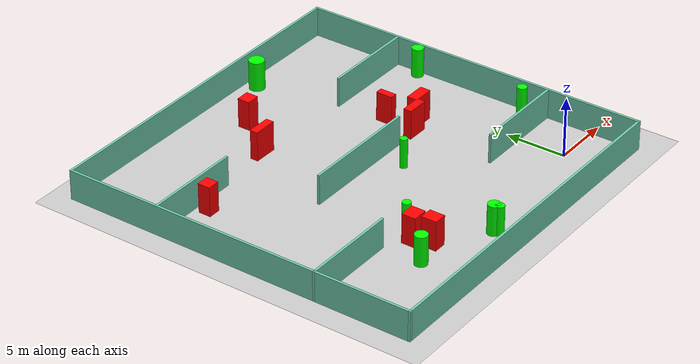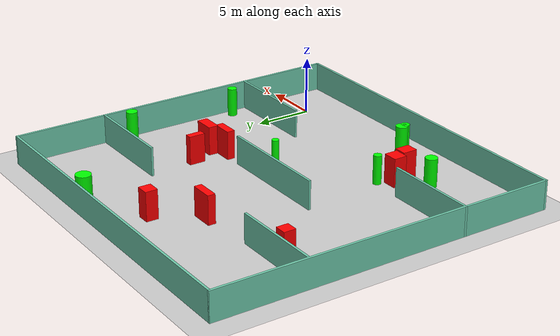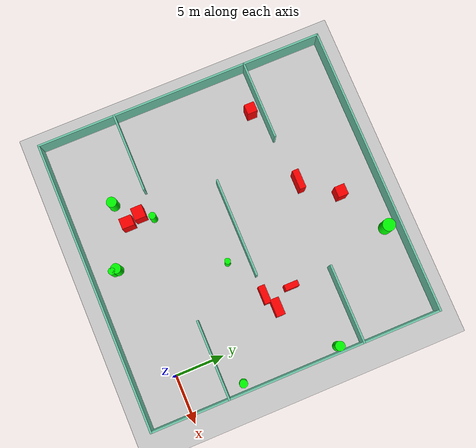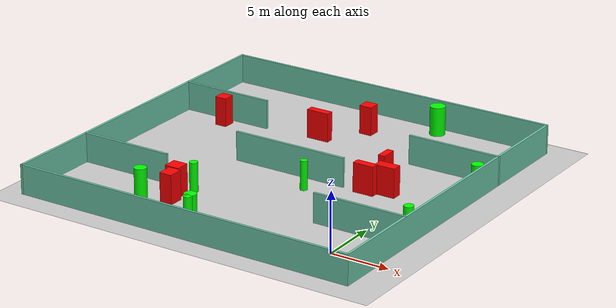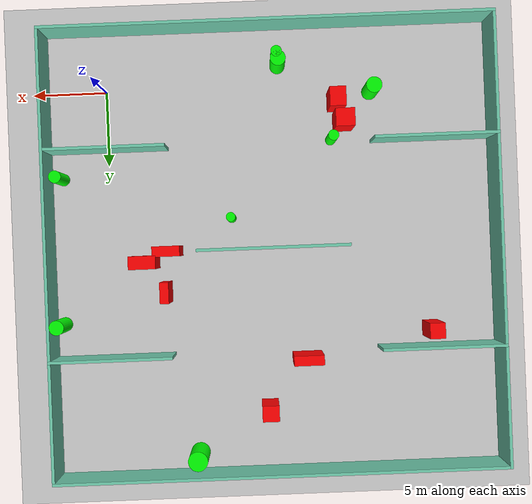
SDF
<sdf version="1.7">
 <world name="default">
  <light name="sun" type="directional">
   <pose>0 0 10 0 -0 0</pose>
   <diffuse>0.8 0.8 0.8 1</diffuse>
   <specular>0.2 0.2 0.2 1</specular>
   <attenuation>
    <range>1000</range>
    <constant>0.9</constant>
    <linear>0.01</linear>
    <quadratic>0.001</quadratic>
   </attenuation>
   <direction>-0.5 0.1 -0.9</direction>
   <spot><inner_angle>0</inner_angle><outer_angle>0</outer_angle><falloff>0</falloff></spot>
  </light>
  <model name="ground_plane">
   <static>1</static>
   <link name="link">
    <collision name="collision">
     <geometry><plane><normal>0 0 1</normal><size>100 100</size></plane></geometry>
     <surface>
      <contact><collide_bitmask>65535</collide_bitmask></contact>
      <friction><ode><mu>100</mu><mu2>50</mu2></ode></friction>
     </surface>
    </collision>
    <visual name="visual">
     <cast_shadows>0</cast_shadows>
     <geometry><plane><normal>0 0 1</normal><size>100 100</size></plane></geometry>
     <material>
      <script><uri>file://media/materials/scripts/gazebo.material</uri><name>Gazebo/Grey</name></script>
     </material>
    </visual>
   </link>
  </model>
  <gravity>0 0 -9.8</gravity>
  <magnetic_field>6e-06 2.3e-05 -4.2e-05</magnetic_field>
  <atmosphere type="adiabatic"/>
  <physics type="ode">
   <max_step_size>0.001</max_step_size>
   <real_time_factor>1</real_time_factor>
   <real_time_update_rate>1000</real_time_update_rate>
  </physics>
  <scene><ambient>0.4 0.4 0.4 1</ambient><background>0.7 0.7 0.7 1</background><shadows>1</shadows></scene>
  <spherical_coordinates>
   <surface_model>EARTH_WGS84</surface_model>
   <latitude_deg>0</latitude_deg>
   <longitude_deg>0</longitude_deg>
   <elevation>0</elevation>
   <heading_deg>0</heading_deg>
  </spherical_coordinates>
  <model name="my_base_walls">
   <link name="Wall_10">
    <collision name="Wall_10_Collision">
     <geometry><box><size>8.2 0.2 2.5</size></box></geometry>
     <pose>0 0 1.25 0 -0 0</pose>
    </collision>
    <visual name="Wall_10_Visual">
     <pose>0 0 1.25 0 -0 0</pose>
     <geometry><box><size>8.2 0.2 2.5</size></box></geometry>
     <material>
      <script><uri>file://media/materials/scripts/gazebo.material</uri><name>Gazebo/Grey</name></script>
      <ambient>0.435294 0.796078 0.67451 1</ambient>
     </material>
     <meta><layer>0</layer></meta>
    </visual>
    <pose>-11 -7 0 0 -0 0</pose>
   </link>
   <link name="Wall_12">
    <collision name="Wall_12_Collision">
     <geometry><box><size>8.2 0.2 2.5</size></box></geometry>
     <pose>0 0 1.25 0 -0 0</pose>
    </collision>
    <visual name="Wall_12_Visual">
     <pose>0 0 1.25 0 -0 0</pose>
     <geometry><box><size>8.2 0.2 2.5</size></box></geometry>
     <material>
      <script><uri>file://media/materials/scripts/gazebo.material</uri><name>Gazebo/Grey</name></script>
      <ambient>0.435294 0.796078 0.67451 1</ambient>
     </material>
     <meta><layer>0</layer></meta>
    </visual>
    <pose>-11 7 0 0 -0 0</pose>
   </link>
   <link name="Wall_14">
    <collision name="Wall_14_Collision">
     <geometry><box><size>8.2 0.2 2.5</size></box></geometry>
     <pose>0 0 1.25 0 -0 0</pose>
    </collision>
    <visual name="Wall_14_Visual">
     <pose>0 0 1.25 0 -0 0</pose>
     <geometry><box><size>8.2 0.2 2.5</size></box></geometry>
     <material>
      <script><uri>file://media/materials/scripts/gazebo.material</uri><name>Gazebo/Grey</name></script>
      <ambient>0.435294 0.796078 0.67451 1</ambient>
     </material>
     <meta><layer>0</layer></meta>
    </visual>
    <pose>11 7 0 0 -0 3.14159</pose>
   </link>
   <link name="Wall_16">
    <collision name="Wall_16_Collision">
     <geometry><box><size>10.2 0.2 2.5</size></box></geometry>
     <pose>0 0 1.25 0 -0 0</pose>
    </collision>
    <visual name="Wall_16_Visual">
     <pose>0 0 1.25 0 -0 0</pose>
     <geometry><box><size>10.2 0.2 2.5</size></box></geometry>
     <material>
      <script><uri>file://media/materials/scripts/gazebo.material</uri><name>Gazebo/Grey</name></script>
      <ambient>0.435294 0.796078 0.67451 1</ambient>
     </material>
     <meta><layer>0</layer></meta>
    </visual>
    <pose>0 0 0 0 -0 3.14159</pose>
   </link>
   <link name="Wall_2">
    <collision name="Wall_2_Collision">
     <geometry><box><size>30.2 0.2 2.5</size></box></geometry>
     <pose>0 0 1.25 0 -0 0</pose>
    </collision>
    <visual name="Wall_2_Visual">
     <pose>0 0 1.25 0 -0 0</pose>
     <geometry><box><size>30.2 0.2 2.5</size></box></geometry>
     <material>
      <script><uri>file://media/materials/scripts/gazebo.material</uri><name>Gazebo/Grey</name></script>
      <ambient>0.435294 0.796078 0.67451 1</ambient>
     </material>
     <meta><layer>0</layer></meta>
    </visual>
    <pose>0 -15 0 0 -0 3.14159</pose>
   </link>
   <link name="Wall_3">
    <collision name="Wall_3_Collision">
     <geometry><box><size>30.2 0.2 2.5</size></box></geometry>
     <pose>0 0 1.25 0 -0 0</pose>
    </collision>
    <visual name="Wall_3_Visual">
     <pose>0 0 1.25 0 -0 0</pose>
     <geometry><box><size>30.2 0.2 2.5</size></box></geometry>
     <material>
      <script><uri>file://media/materials/scripts/gazebo.material</uri><name>Gazebo/Grey</name></script>
      <ambient>0.435294 0.796078 0.67451 1</ambient>
     </material>
     <meta><layer>0</layer></meta>
    </visual>
    <pose>-15 0 0 0 -0 1.5708</pose>
   </link>
   <link name="Wall_4">
    <collision name="Wall_4_Collision">
     <geometry><box><size>30.2 0.2 2.5</size></box></geometry>
     <pose>0 0 1.25 0 -0 0</pose>
    </collision>
    <visual name="Wall_4_Visual">
     <pose>0 0 1.25 0 -0 0</pose>
     <geometry><box><size>30.2 0.2 2.5</size></box></geometry>
     <material>
      <script><uri>file://media/materials/scripts/gazebo.material</uri><name>Gazebo/Grey</name></script>
      <ambient>0.435294 0.796078 0.67451 1</ambient>
     </material>
     <meta><layer>0</layer></meta>
    </visual>
    <pose>0 15 0 0 -0 0</pose>
   </link>
   <link name="Wall_6">
    <collision name="Wall_6_Collision">
     <geometry><box><size>30.2 0.2 2.5</size></box></geometry>
     <pose>0 0 1.25 0 -0 0</pose>
    </collision>
    <visual name="Wall_6_Visual">
     <pose>0 0 1.25 0 -0 0</pose>
     <geometry><box><size>30.2 0.2 2.5</size></box></geometry>
     <material>
      <script><uri>file://media/materials/scripts/gazebo.material</uri><name>Gazebo/Grey</name></script>
      <ambient>0.435294 0.796078 0.67451 1</ambient>
     </material>
     <meta><layer>0</layer></meta>
    </visual>
    <pose>15 0 0 0 -0 1.5708</pose>
   </link>
   <link name="Wall_8">
    <collision name="Wall_8_Collision">
     <geometry><box><size>8.2 0.2 2.5</size></box></geometry>
     <pose>0 0 1.25 0 -0 0</pose>
    </collision>
    <visual name="Wall_8_Visual">
     <pose>0 0 1.25 0 -0 0</pose>
     <geometry><box><size>8.2 0.2 2.5</size></box></geometry>
     <material>
      <script><uri>file://media/materials/scripts/gazebo.material</uri><name>Gazebo/Grey</name></script>
      <ambient>0.435294 0.796078 0.67451 1</ambient>
     </material>
     <meta><layer>0</layer></meta>
    </visual>
    <pose>11 -7 0 0 -0 3.14159</pose>
   </link>
   <static>1</static>
   <pose>-11 11 0 0 -0 0</pose>
  </model>
  <model name="cylinder1">
   <static>1</static>
   <link name="link">
    <inertial>
     <mass>1</mass>
     <inertia><ixx>0.5</ixx><ixy>0</ixy><ixz>0</ixz><iyy>0.5</iyy><iyz>0</iyz><izz>1</izz></inertia>
    </inertial>
    <collision name="collision">
     <geometry><cylinder><radius>0.36308598716261725</radius><length>2.5</length></cylinder></geometry>
    </collision>
    <visual name="visual">
     <geometry><cylinder><radius>0.36308598716261725</radius><length>2.5</length></cylinder></geometry>
     <material>
      <ambient>0 1 0 1</ambient>
      <diffuse>0 1 0 1</diffuse>
      <specular>0.1 0.1 0.1 1</specular>
      <emissive>0 0 0 0</emissive>
     </material>
    </visual>
   </link>
   <pose>-11.65144092676087 -1.8391368075323422 1.25 0 0 0</pose>
  </model>
  <model name="cylinder2">
   <static>1</static>
   <link name="link">
    <inertial>
     <mass>1</mass>
     <inertia><ixx>0.5</ixx><ixy>0</ixy><ixz>0</ixz><iyy>0.5</iyy><iyz>0</iyz><izz>1</izz></inertia>
    </inertial>
    <collision name="collision">
     <geometry><cylinder><radius>0.48937595334609285</radius><length>2.5</length></cylinder></geometry>
    </collision>
    <visual name="visual">
     <geometry><cylinder><radius>0.48937595334609285</radius><length>2.5</length></cylinder></geometry>
     <material>
      <ambient>0 1 0 1</ambient>
      <diffuse>0 1 0 1</diffuse>
      <specular>0.1 0.1 0.1 1</specular>
      <emissive>0 0 0 0</emissive>
     </material>
    </visual>
   </link>
   <pose>3.4214926955302616 15.726313586179266 1.25 0 0 0</pose>
  </model>
  <model name="cylinder3">
   <static>1</static>
   <link name="link">
    <inertial>
     <mass>1</mass>
     <inertia><ixx>0.5</ixx><ixy>0</ixy><ixz>0</ixz><iyy>0.5</iyy><iyz>0</iyz><izz>1</izz></inertia>
    </inertial>
    <collision name="collision">
     <geometry><cylinder><radius>0.5105446989306797</radius><length>2.5</length></cylinder></geometry>
    </collision>
    <visual name="visual">
     <geometry><cylinder><radius>0.5105446989306797</radius><length>2.5</length></cylinder></geometry>
     <material>
      <ambient>0 1 0 1</ambient>
      <diffuse>0 1 0 1</diffuse>
      <specular>0.1 0.1 0.1 1</specular>
      <emissive>0 0 0 0</emissive>
     </material>
    </visual>
   </link>
   <pose>-11.745600687563332 -1.38708810214295 1.25 0 0 0</pose>
  </model>
  <model name="cylinder4">
   <static>1</static>
   <link name="link">
    <inertial>
     <mass>1</mass>
     <inertia><ixx>0.5</ixx><ixy>0</ixy><ixz>0</ixz><iyy>0.5</iyy><iyz>0</iyz><izz>1</izz></inertia>
    </inertial>
    <collision name="collision">
     <geometry><cylinder><radius>0.4081925663581469</radius><length>2.5</length></cylinder></geometry>
    </collision>
    <visual name="visual">
     <geometry><cylinder><radius>0.4081925663581469</radius><length>2.5</length></cylinder></geometry>
     <material>
      <ambient>0 1 0 1</ambient>
      <diffuse>0 1 0 1</diffuse>
      <specular>0.1 0.1 0.1 1</specular>
      <emissive>0 0 0 0</emissive>
     </material>
    </visual>
   </link>
   <pose>3.157855056229465 5.829377307577101 1.25 0 0 0</pose>
  </model>
  <model name="cylinder5">
   <static>1</static>
   <link name="link">
    <inertial>
     <mass>1</mass>
     <inertia><ixx>0.5</ixx><ixy>0</ixy><ixz>0</ixz><iyy>0.5</iyy><iyz>0</iyz><izz>1</izz></inertia>
    </inertial>
    <collision name="collision">
     <geometry><cylinder><radius>0.6528828613332053</radius><length>2.5</length></cylinder></geometry>
    </collision>
    <visual name="visual">
     <geometry><cylinder><radius>0.6528828613332053</radius><length>2.5</length></cylinder></geometry>
     <material>
      <ambient>0 1 0 1</ambient>
      <diffuse>0 1 0 1</diffuse>
      <specular>0.1 0.1 0.1 1</specular>
      <emissive>0 0 0 0</emissive>
     </material>
    </visual>
   </link>
   <pose>-5.508215972106063 24.822702319241106 1.25 0 0 0</pose>
  </model>
  <model name="cylinder6">
   <static>1</static>
   <link name="link">
    <inertial>
     <mass>1</mass>
     <inertia><ixx>0.5</ixx><ixy>0</ixy><ixz>0</ixz><iyy>0.5</iyy><iyz>0</iyz><izz>1</izz></inertia>
    </inertial>
    <collision name="collision">
     <geometry><cylinder><radius>0.35195101232281334</radius><length>2.5</length></cylinder></geometry>
    </collision>
    <visual name="visual">
     <geometry><cylinder><radius>0.35195101232281334</radius><length>2.5</length></cylinder></geometry>
     <material>
      <ambient>0 1 0 1</ambient>
      <diffuse>0 1 0 1</diffuse>
      <specular>0.1 0.1 0.1 1</specular>
      <emissive>0 0 0 0</emissive>
     </material>
    </visual>
   </link>
   <pose>-15.204821172133478 3.8043713315326073 1.25 0 0 0</pose>
  </model>
  <model name="cylinder7">
   <static>1</static>
   <link name="link">
    <inertial>
     <mass>1</mass>
     <inertia><ixx>0.5</ixx><ixy>0</ixy><ixz>0</ixz><iyy>0.5</iyy><iyz>0</iyz><izz>1</izz></inertia>
    </inertial>
    <collision name="collision">
     <geometry><cylinder><radius>0.5238312282258061</radius><length>2.5</length></cylinder></geometry>
    </collision>
    <visual name="visual">
     <geometry><cylinder><radius>0.5238312282258061</radius><length>2.5</length></cylinder></geometry>
     <material>
      <ambient>0 1 0 1</ambient>
      <diffuse>0 1 0 1</diffuse>
      <specular>0.1 0.1 0.1 1</specular>
      <emissive>0 0 0 0</emissive>
     </material>
    </visual>
   </link>
   <pose>-17.982309437318737 0.617324206445018 1.25 0 0 0</pose>
  </model>
  <model name="cylinder8">
   <static>1</static>
   <link name="link">
    <inertial>
     <mass>1</mass>
     <inertia><ixx>0.5</ixx><ixy>0</ixy><ixz>0</ixz><iyy>0.5</iyy><iyz>0</iyz><izz>1</izz></inertia>
    </inertial>
    <collision name="collision">
     <geometry><cylinder><radius>0.30865634337834075</radius><length>2.5</length></cylinder></geometry>
    </collision>
    <visual name="visual">
     <geometry><cylinder><radius>0.30865634337834075</radius><length>2.5</length></cylinder></geometry>
     <material>
      <ambient>0 1 0 1</ambient>
      <diffuse>0 1 0 1</diffuse>
      <specular>0.1 0.1 0.1 1</specular>
      <emissive>0 0 0 0</emissive>
     </material>
    </visual>
   </link>
   <pose>-8.261751311920044 8.89965772327994 1.25 0 0 0</pose>
  </model>
  <model name="box1">
   <static>1</static>
   <link name="link">
    <inertial>
     <mass>1</mass>
     <inertia><ixx>0.083</ixx><ixy>0</ixy><ixz>0</ixz><iyy>0.083</iyy><iyz>0</iyz><izz>0.083</izz></inertia>
    </inertial>
    <collision name="collision">
     <geometry><box><size>1.1160877403077143 1.0491614427494023 2.5</size></box></geometry>
    </collision>
    <visual name="visual">
     <geometry><box><size>1.1160877403077143 1.0491614427494023 2.5</size></box></geometry>
     <material>
      <ambient>1 0 0 1</ambient>
      <diffuse>1 0 0 1</diffuse>
      <specular>0.1 0.1 0.1 1</specular>
      <emissive>0 0 0 0</emissive>
     </material>
    </visual>
    <sensor name="my_contact" type="contact">
     <contact><collision>box_collision</collision><topic>__default_topic__</topic></contact>
    </sensor>
   </link>
   <pose>-10.403505227797126 21.884012248107506 1.25 0 0 0</pose>
  </model>
  <model name="box2">
   <static>1</static>
   <link name="link">
    <inertial>
     <mass>1</mass>
     <inertia><ixx>0.083</ixx><ixy>0</ixy><ixz>0</ixz><iyy>0.083</iyy><iyz>0</iyz><izz>0.083</izz></inertia>
    </inertial>
    <collision name="collision">
     <geometry><box><size>0.5913010828055482 1.4086012531989918 2.5</size></box></geometry>
    </collision>
    <visual name="visual">
     <geometry><box><size>0.5913010828055482 1.4086012531989918 2.5</size></box></geometry>
     <material>
      <ambient>1 0 0 1</ambient>
      <diffuse>1 0 0 1</diffuse>
      <specular>0.1 0.1 0.1 1</specular>
      <emissive>0 0 0 0</emissive>
     </material>
    </visual>
    <sensor name="my_contact" type="contact">
     <contact><collision>box_collision</collision><topic>__default_topic__</topic></contact>
    </sensor>
   </link>
   <pose>-3.7117824585598314 13.725048472701548 1.25 0 0 0</pose>
  </model>
  <model name="box3">
   <static>1</static>
   <link name="link">
    <inertial>
     <mass>1</mass>
     <inertia><ixx>0.083</ixx><ixy>0</ixy><ixz>0</ixz><iyy>0.083</iyy><iyz>0</iyz><izz>0.083</izz></inertia>
    </inertial>
    <collision name="collision">
     <geometry><box><size>1.018848116799147 1.0462623543728506 2.5</size></box></geometry>
    </collision>
    <visual name="visual">
     <geometry><box><size>1.018848116799147 1.0462623543728506 2.5</size></box></geometry>
     <material>
      <ambient>1 0 0 1</ambient>
      <diffuse>1 0 0 1</diffuse>
      <specular>0.1 0.1 0.1 1</specular>
      <emissive>0 0 0 0</emissive>
     </material>
    </visual>
    <sensor name="my_contact" type="contact">
     <contact><collision>box_collision</collision><topic>__default_topic__</topic></contact>
    </sensor>
   </link>
   <pose>-21.519226083306968 16.882207751066066 1.25 0 0 0</pose>
  </model>
  <model name="box4">
   <static>1</static>
   <link name="link">
    <inertial>
     <mass>1</mass>
     <inertia><ixx>0.083</ixx><ixy>0</ixy><ixz>0</ixz><iyy>0.083</iyy><iyz>0</iyz><izz>0.083</izz></inertia>
    </inertial>
    <collision name="collision">
     <geometry><box><size>1.0788444172425677 1.270788048274311 2.5</size></box></geometry>
    </collision>
    <visual name="visual">
     <geometry><box><size>1.0788444172425677 1.270788048274311 2.5</size></box></geometry>
     <material>
      <ambient>1 0 0 1</ambient>
      <diffuse>1 0 0 1</diffuse>
      <specular>0.1 0.1 0.1 1</specular>
      <emissive>0 0 0 0</emissive>
     </material>
    </visual>
    <sensor name="my_contact" type="contact">
     <contact><collision>box_collision</collision><topic>__default_topic__</topic></contact>
    </sensor>
   </link>
   <pose>-15.593845160176308 1.2508749284357457 1.25 0 0 0</pose>
  </model>
  <model name="box5">
   <static>1</static>
   <link name="link">
    <inertial>
     <mass>1</mass>
     <inertia><ixx>0.083</ixx><ixy>0</ixy><ixz>0</ixz><iyy>0.083</iyy><iyz>0</iyz><izz>0.083</izz></inertia>
    </inertial>
    <collision name="collision">
     <geometry><box><size>1.7935092696933035 0.8837978409725662 2.5</size></box></geometry>
    </collision>
    <visual name="visual">
     <geometry><box><size>1.7935092696933035 0.8837978409725662 2.5</size></box></geometry>
     <material>
      <ambient>1 0 0 1</ambient>
      <diffuse>1 0 0 1</diffuse>
      <specular>0.1 0.1 0.1 1</specular>
      <emissive>0 0 0 0</emissive>
     </material>
    </visual>
    <sensor name="my_contact" type="contact">
     <contact><collision>box_collision</collision><topic>__default_topic__</topic></contact>
    </sensor>
   </link>
   <pose>-2.3149931999790496 11.672122725521008 1.25 0 0 0</pose>
  </model>
  <model name="box6">
   <static>1</static>
   <link name="link">
    <inertial>
     <mass>1</mass>
     <inertia><ixx>0.083</ixx><ixy>0</ixy><ixz>0</ixz><iyy>0.083</iyy><iyz>0</iyz><izz>0.083</izz></inertia>
    </inertial>
    <collision name="collision">
     <geometry><box><size>1.2728734892714613 1.1762978204002652 2.5</size></box></geometry>
    </collision>
    <visual name="visual">
     <geometry><box><size>1.2728734892714613 1.1762978204002652 2.5</size></box></geometry>
     <material>
      <ambient>1 0 0 1</ambient>
      <diffuse>1 0 0 1</diffuse>
      <specular>0.1 0.1 0.1 1</specular>
      <emissive>0 0 0 0</emissive>
     </material>
    </visual>
    <sensor name="my_contact" type="contact">
     <contact><collision>box_collision</collision><topic>__default_topic__</topic></contact>
    </sensor>
   </link>
   <pose>-16.028015850921566 2.641162040286539 1.25 0 0 0</pose>
  </model>
  <model name="box7">
   <static>1</static>
   <link name="link">
    <inertial>
     <mass>1</mass>
     <inertia><ixx>0.083</ixx><ixy>0</ixy><ixz>0</ixz><iyy>0.083</iyy><iyz>0</iyz><izz>0.083</izz></inertia>
    </inertial>
    <collision name="collision">
     <geometry><box><size>1.8218678621398148 0.6879510930559241 2.5</size></box></geometry>
    </collision>
    <visual name="visual">
     <geometry><box><size>1.8218678621398148 0.6879510930559241 2.5</size></box></geometry>
     <material>
      <ambient>1 0 0 1</ambient>
      <diffuse>1 0 0 1</diffuse>
      <specular>0.1 0.1 0.1 1</specular>
      <emissive>0 0 0 0</emissive>
     </material>
    </visual>
    <sensor name="my_contact" type="contact">
     <contact><collision>box_collision</collision><topic>__default_topic__</topic></contact>
    </sensor>
   </link>
   <pose>-3.9100509513846013 10.984402276940058 1.25 0 0 0</pose>
  </model>
  <model name="box8">
   <static>1</static>
   <link name="link">
    <inertial>
     <mass>1</mass>
     <inertia><ixx>0.083</ixx><ixy>0</ixy><ixz>0</ixz><iyy>0.083</iyy><iyz>0</iyz><izz>0.083</izz></inertia>
    </inertial>
    <collision name="collision">
     <geometry><box><size>1.9942821921432854 0.6596876078218552 2.5</size></box></geometry>
    </collision>
    <visual name="visual">
     <geometry><box><size>1.9942821921432854 0.6596876078218552 2.5</size></box></geometry>
     <material>
      <ambient>1 0 0 1</ambient>
      <diffuse>1 0 0 1</diffuse>
      <specular>0.1 0.1 0.1 1</specular>
      <emissive>0 0 0 0</emissive>
     </material>
    </visual>
    <sensor name="my_contact" type="contact">
     <contact><collision>box_collision</collision><topic>__default_topic__</topic></contact>
    </sensor>
   </link>
   <pose>-13.050089970994426 18.505136056609867 1.25 0 0 0</pose>
  </model>
 </world>
</sdf>
